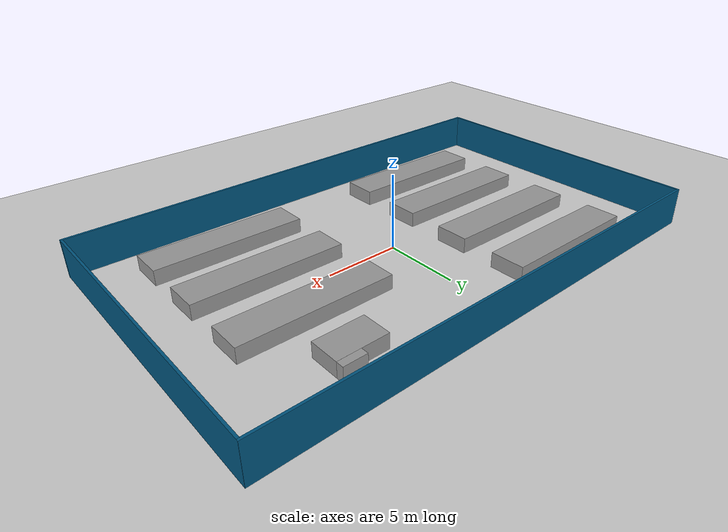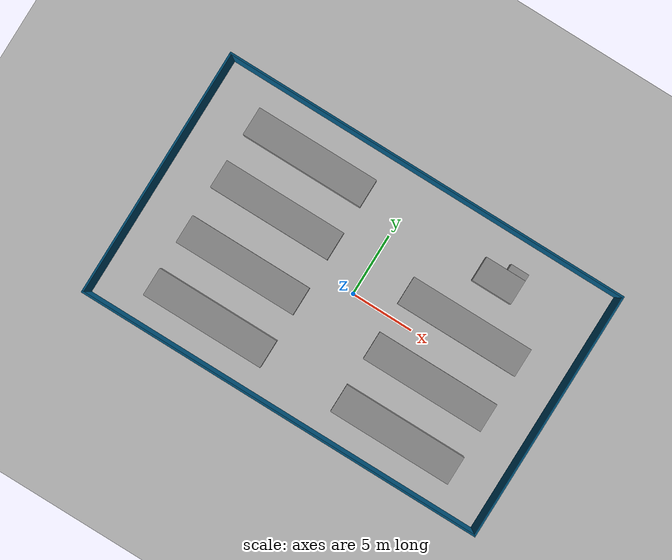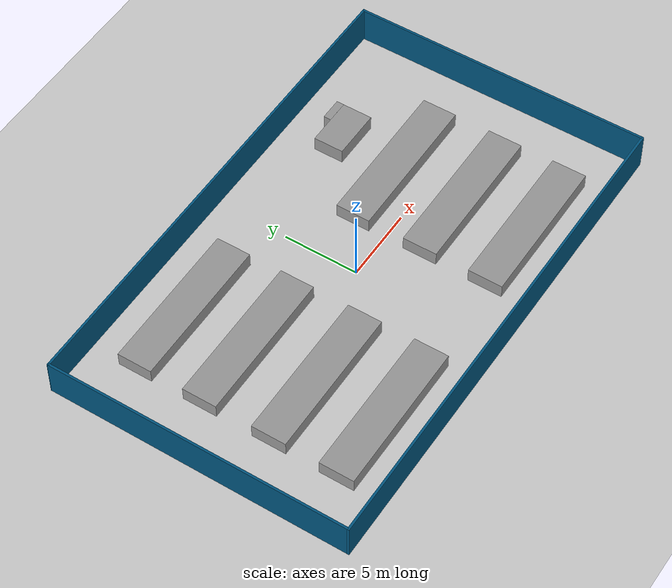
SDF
<sdf version="1.6">
 <world name="default">
  <light name="sun" type="directional">
   <pose>0 0 10 0 -0 0</pose>
   <diffuse>0.8 0.8 0.8 1</diffuse>
   <specular>0.2 0.2 0.2 1</specular>
   <attenuation>
    <range>1000</range>
    <constant>0.9</constant>
    <linear>0.01</linear>
    <quadratic>0.001</quadratic>
   </attenuation>
   <direction>-0.5 0.1 -0.9</direction>
  </light>
  <model name="ground_plane">
   <static>1</static>
   <link name="link">
    <collision name="collision">
     <geometry><plane><normal>0 0 1</normal><size>100 100</size></plane></geometry>
     <surface>
      <contact><collide_bitmask>65535</collide_bitmask></contact>
      <friction><ode><mu>100</mu><mu2>50</mu2></ode></friction>
     </surface>
    </collision>
    <visual name="visual">
     <cast_shadows>0</cast_shadows>
     <geometry><plane><normal>0 0 1</normal><size>100 100</size></plane></geometry>
     <material>
      <script><uri>file://media/materials/scripts/gazebo.material</uri><name>Gazebo/Grey</name></script>
     </material>
    </visual>
   </link>
  </model>
  <gravity>0 0 -9.8</gravity>
  <magnetic_field>6e-06 2.3e-05 -4.2e-05</magnetic_field>
  <atmosphere type="adiabatic"/>
  <physics name="default_physics" default="0" type="ode">
   <max_step_size>0.001</max_step_size>
   <real_time_factor>1</real_time_factor>
   <real_time_update_rate>1000</real_time_update_rate>
  </physics>
  <scene><ambient>0.4 0.4 0.4 1</ambient><background>0.7 0.7 0.7 1</background><shadows>1</shadows></scene>
  <audio><device>default</device></audio>
  <spherical_coordinates>
   <surface_model>EARTH_WGS84</surface_model>
   <latitude_deg>0</latitude_deg>
   <longitude_deg>0</longitude_deg>
   <elevation>0</elevation>
   <heading_deg>0</heading_deg>
  </spherical_coordinates>
  <model name="varta_machine">
   <link name="link_0">
    <inertial>
     <mass>1</mass>
     <inertia>
      <ixx>0.166667</ixx>
      <ixy>0</ixy>
      <ixz>0</ixz>
      <iyy>0.166667</iyy>
      <iyz>0</iyz>
      <izz>0.166667</izz>
     </inertia>
    </inertial>
    <pose>0.1057 -0.071391 0 0 -0 0</pose>
    <visual name="visual">
     <geometry><box><size>10 2.3 1</size></box></geometry>
     <material>
      <lighting>1</lighting>
      <script><uri>file://media/materials/scripts/gazebo.material</uri><name>Gazebo/Grey</name></script>
      <shader type="vertex"><normal_map>__default__</normal_map></shader>
      <ambient>0.3 0.3 0.3 1</ambient>
      <diffuse>0.7 0.7 0.7 1</diffuse>
      <specular>0.01 0.01 0.01 1</specular>
      <emissive>0 0 0 1</emissive>
     </material>
    </visual>
    <collision name="collision">
     <geometry><box><size>10 2.3 1</size></box></geometry>
     <surface>
      <friction>
       <ode><mu>1</mu><mu2>1</mu2><fdir1>0 0 0</fdir1><slip1>0</slip1><slip2>0</slip2></ode>
       <torsional>
        <coefficient>1</coefficient>
        <patch_radius>0</patch_radius>
        <surface_radius>0</surface_radius>
        <use_patch_radius>1</use_patch_radius>
        <ode><slip>0</slip></ode>
       </torsional>
      </friction>
      <bounce><restitution_coefficient>0</restitution_coefficient><threshold>1e+06</threshold></bounce>
      <contact>
       <collide_without_contact>0</collide_without_contact>
       <collide_without_contact_bitmask>1</collide_without_contact_bitmask>
       <collide_bitmask>1</collide_bitmask>
       <ode>
        <soft_cfm>0</soft_cfm>
        <soft_erp>0.2</soft_erp>
        <kp>1e+13</kp>
        <kd>1</kd>
        <max_vel>0.01</max_vel>
        <min_depth>0</min_depth>
       </ode>
       <bullet>
        <split_impulse>1</split_impulse>
        <split_impulse_penetration_threshold>-0.01</split_impulse_penetration_threshold>
        <soft_cfm>0</soft_cfm>
        <soft_erp>0.2</soft_erp>
        <kp>1e+13</kp>
        <kd>1</kd>
       </bullet>
      </contact>
     </surface>
    </collision>
   </link>
   <static>0</static>
   <pose>-8.00023 6.82591 0.455815 0 -0.008665 0</pose>
  </model>
  <model name="varta_machine_0">
   <link name="link_0">
    <inertial>
     <mass>1</mass>
     <inertia>
      <ixx>0.166667</ixx>
      <ixy>0</ixy>
      <ixz>0</ixz>
      <iyy>0.166667</iyy>
      <iyz>0</iyz>
      <izz>0.166667</izz>
     </inertia>
    </inertial>
    <pose>0.1057 -0.071391 0 0 -0 0</pose>
    <visual name="visual">
     <geometry><box><size>10 2.3 1</size></box></geometry>
     <material>
      <lighting>1</lighting>
      <script><uri>file://media/materials/scripts/gazebo.material</uri><name>Gazebo/Grey</name></script>
      <shader type="vertex"><normal_map>__default__</normal_map></shader>
      <ambient>0.3 0.3 0.3 1</ambient>
      <diffuse>0.7 0.7 0.7 1</diffuse>
      <specular>0.01 0.01 0.01 1</specular>
      <emissive>0 0 0 1</emissive>
     </material>
    </visual>
    <collision name="collision">
     <geometry><box><size>10 2.3 1</size></box></geometry>
     <surface>
      <friction>
       <ode><mu>1</mu><mu2>1</mu2><fdir1>0 0 0</fdir1><slip1>0</slip1><slip2>0</slip2></ode>
       <torsional>
        <coefficient>1</coefficient>
        <patch_radius>0</patch_radius>
        <surface_radius>0</surface_radius>
        <use_patch_radius>1</use_patch_radius>
        <ode><slip>0</slip></ode>
       </torsional>
      </friction>
      <bounce><restitution_coefficient>0</restitution_coefficient><threshold>1e+06</threshold></bounce>
      <contact>
       <collide_without_contact>0</collide_without_contact>
       <collide_without_contact_bitmask>1</collide_without_contact_bitmask>
       <collide_bitmask>1</collide_bitmask>
       <ode>
        <soft_cfm>0</soft_cfm>
        <soft_erp>0.2</soft_erp>
        <kp>1e+13</kp>
        <kd>1</kd>
        <max_vel>0.01</max_vel>
        <min_depth>0</min_depth>
       </ode>
       <bullet>
        <split_impulse>1</split_impulse>
        <split_impulse_penetration_threshold>-0.01</split_impulse_penetration_threshold>
        <soft_cfm>0</soft_cfm>
        <soft_erp>0.2</soft_erp>
        <kp>1e+13</kp>
        <kd>1</kd>
       </bullet>
      </contact>
     </surface>
    </collision>
   </link>
   <static>0</static>
   <pose>-8.00023 2.32591 0.455815 0 -0.008665 0</pose>
  </model>
  <model name="varta_machine_1">
   <link name="link_0">
    <inertial>
     <mass>1</mass>
     <inertia>
      <ixx>0.166667</ixx>
      <ixy>0</ixy>
      <ixz>0</ixz>
      <iyy>0.166667</iyy>
      <iyz>0</iyz>
      <izz>0.166667</izz>
     </inertia>
    </inertial>
    <pose>0.1057 -0.071391 0 0 -0 0</pose>
    <visual name="visual">
     <geometry><box><size>10 2.3 1</size></box></geometry>
     <material>
      <lighting>1</lighting>
      <script><uri>file://media/materials/scripts/gazebo.material</uri><name>Gazebo/Grey</name></script>
      <shader type="vertex"><normal_map>__default__</normal_map></shader>
      <ambient>0.3 0.3 0.3 1</ambient>
      <diffuse>0.7 0.7 0.7 1</diffuse>
      <specular>0.01 0.01 0.01 1</specular>
      <emissive>0 0 0 1</emissive>
     </material>
    </visual>
    <collision name="collision">
     <geometry><box><size>10 2.3 1</size></box></geometry>
     <surface>
      <friction>
       <ode><mu>1</mu><mu2>1</mu2><fdir1>0 0 0</fdir1><slip1>0</slip1><slip2>0</slip2></ode>
       <torsional>
        <coefficient>1</coefficient>
        <patch_radius>0</patch_radius>
        <surface_radius>0</surface_radius>
        <use_patch_radius>1</use_patch_radius>
        <ode><slip>0</slip></ode>
       </torsional>
      </friction>
      <bounce><restitution_coefficient>0</restitution_coefficient><threshold>1e+06</threshold></bounce>
      <contact>
       <collide_without_contact>0</collide_without_contact>
       <collide_without_contact_bitmask>1</collide_without_contact_bitmask>
       <collide_bitmask>1</collide_bitmask>
       <ode>
        <soft_cfm>0</soft_cfm>
        <soft_erp>0.2</soft_erp>
        <kp>1e+13</kp>
        <kd>1</kd>
        <max_vel>0.01</max_vel>
        <min_depth>0</min_depth>
       </ode>
       <bullet>
        <split_impulse>1</split_impulse>
        <split_impulse_penetration_threshold>-0.01</split_impulse_penetration_threshold>
        <soft_cfm>0</soft_cfm>
        <soft_erp>0.2</soft_erp>
        <kp>1e+13</kp>
        <kd>1</kd>
       </bullet>
      </contact>
     </surface>
    </collision>
   </link>
   <static>0</static>
   <pose>-8.00023 -2.37409 0.455815 0 -0.008665 0</pose>
  </model>
  <model name="VartaWalls">
   <link name="Wall_12">
    <pose>0 9.95647 0 0 -0 0</pose>
    <visual name="Wall_12_Visual">
     <pose>0 0 1.25 0 -0 0</pose>
     <geometry><box><size>33 0.15 2.5</size></box></geometry>
     <material>
      <script><uri>file://media/materials/scripts/gazebo.material</uri><name>Gazebo/Grey</name></script>
      <ambient>0 0.333333 0.498039 1</ambient>
     </material>
     <meta><layer>0</layer></meta>
    </visual>
    <collision name="Wall_12_Collision">
     <pose>0 0 1.25 0 -0 0</pose>
     <geometry><box><size>33 0.15 2.5</size></box></geometry>
     <surface>
      <friction>
       <ode><mu>1</mu><mu2>1</mu2><fdir1>0 0 0</fdir1><slip1>0</slip1><slip2>0</slip2></ode>
       <torsional>
        <coefficient>1</coefficient>
        <patch_radius>0</patch_radius>
        <surface_radius>0</surface_radius>
        <use_patch_radius>1</use_patch_radius>
        <ode><slip>0</slip></ode>
       </torsional>
      </friction>
      <bounce><restitution_coefficient>0</restitution_coefficient><threshold>1e+06</threshold></bounce>
      <contact>
       <collide_without_contact>0</collide_without_contact>
       <collide_without_contact_bitmask>1</collide_without_contact_bitmask>
       <collide_bitmask>1</collide_bitmask>
       <ode>
        <soft_cfm>0</soft_cfm>
        <soft_erp>0.2</soft_erp>
        <kp>1e+13</kp>
        <kd>1</kd>
        <max_vel>0.01</max_vel>
        <min_depth>0</min_depth>
       </ode>
       <bullet>
        <split_impulse>1</split_impulse>
        <split_impulse_penetration_threshold>-0.01</split_impulse_penetration_threshold>
        <soft_cfm>0</soft_cfm>
        <soft_erp>0.2</soft_erp>
        <kp>1e+13</kp>
        <kd>1</kd>
       </bullet>
      </contact>
     </surface>
    </collision>
   </link>
   <link name="Wall_13">
    <pose>16.425 0 0 0 0 -1.5708</pose>
    <inertial>
     <mass>1</mass>
     <inertia><ixx>1</ixx><ixy>0</ixy><ixz>0</ixz><iyy>1</iyy><iyz>0</iyz><izz>1</izz></inertia>
    </inertial>
    <visual name="Wall_13_Visual">
     <pose>0 0 1.25 0 -0 0</pose>
     <geometry><box><size>20 0.15 2.5</size></box></geometry>
     <material>
      <script><uri>file://media/materials/scripts/gazebo.material</uri><name>Gazebo/Grey</name></script>
      <ambient>0 0.333 0.498 1</ambient>
      <shader type="vertex"><normal_map>__default__</normal_map></shader>
      <diffuse>0.7 0.7 0.7 1</diffuse>
      <specular>0.01 0.01 0.01 1</specular>
      <emissive>0 0 0 1</emissive>
     </material>
     <meta><layer>0</layer></meta>
    </visual>
    <collision name="Wall_13_Collision">
     <pose>0 0 1.25 0 -0 0</pose>
     <geometry><box><size>20 0.15 2.5</size></box></geometry>
     <surface>
      <friction>
       <ode><mu>1</mu><mu2>1</mu2><fdir1>0 0 0</fdir1><slip1>0</slip1><slip2>0</slip2></ode>
       <torsional>
        <coefficient>1</coefficient>
        <patch_radius>0</patch_radius>
        <surface_radius>0</surface_radius>
        <use_patch_radius>1</use_patch_radius>
        <ode><slip>0</slip></ode>
       </torsional>
      </friction>
      <bounce><restitution_coefficient>0</restitution_coefficient><threshold>1e+06</threshold></bounce>
      <contact>
       <collide_without_contact>0</collide_without_contact>
       <collide_without_contact_bitmask>1</collide_without_contact_bitmask>
       <collide_bitmask>1</collide_bitmask>
       <ode>
        <soft_cfm>0</soft_cfm>
        <soft_erp>0.2</soft_erp>
        <kp>1e+13</kp>
        <kd>1</kd>
        <max_vel>0.01</max_vel>
        <min_depth>0</min_depth>
       </ode>
       <bullet>
        <split_impulse>1</split_impulse>
        <split_impulse_penetration_threshold>-0.01</split_impulse_penetration_threshold>
        <soft_cfm>0</soft_cfm>
        <soft_erp>0.2</soft_erp>
        <kp>1e+13</kp>
        <kd>1</kd>
       </bullet>
      </contact>
     </surface>
    </collision>
   </link>
   <link name="Wall_5">
    <pose>0 -10.0304 0 0 -0 0</pose>
    <visual name="Wall_5_Visual">
     <pose>0 0 1.25 0 -0 0</pose>
     <geometry><box><size>33 0.15 2.5</size></box></geometry>
     <material>
      <script><uri>file://media/materials/scripts/gazebo.material</uri><name>Gazebo/Grey</name></script>
      <ambient>0 0.333333 0.498039 1</ambient>
     </material>
     <meta><layer>0</layer></meta>
    </visual>
    <collision name="Wall_5_Collision">
     <pose>0 0 1.25 0 -0 0</pose>
     <geometry><box><size>33 0.15 2.5</size></box></geometry>
     <surface>
      <friction>
       <ode><mu>1</mu><mu2>1</mu2><fdir1>0 0 0</fdir1><slip1>0</slip1><slip2>0</slip2></ode>
       <torsional>
        <coefficient>1</coefficient>
        <patch_radius>0</patch_radius>
        <surface_radius>0</surface_radius>
        <use_patch_radius>1</use_patch_radius>
        <ode><slip>0</slip></ode>
       </torsional>
      </friction>
      <bounce><restitution_coefficient>0</restitution_coefficient><threshold>1e+06</threshold></bounce>
      <contact>
       <collide_without_contact>0</collide_without_contact>
       <collide_without_contact_bitmask>1</collide_without_contact_bitmask>
       <collide_bitmask>1</collide_bitmask>
       <ode>
        <soft_cfm>0</soft_cfm>
        <soft_erp>0.2</soft_erp>
        <kp>1e+13</kp>
        <kd>1</kd>
        <max_vel>0.01</max_vel>
        <min_depth>0</min_depth>
       </ode>
       <bullet>
        <split_impulse>1</split_impulse>
        <split_impulse_penetration_threshold>-0.01</split_impulse_penetration_threshold>
        <soft_cfm>0</soft_cfm>
        <soft_erp>0.2</soft_erp>
        <kp>1e+13</kp>
        <kd>1</kd>
       </bullet>
      </contact>
     </surface>
    </collision>
   </link>
   <link name="Wall_7">
    <pose>-16.425 0 0 0 -0 1.5708</pose>
    <inertial>
     <mass>1</mass>
     <inertia><ixx>1</ixx><ixy>0</ixy><ixz>0</ixz><iyy>1</iyy><iyz>0</iyz><izz>1</izz></inertia>
    </inertial>
    <visual name="Wall_7_Visual">
     <pose>0 0 1.25 0 -0 0</pose>
     <geometry><box><size>20 0.15 2.5</size></box></geometry>
     <material>
      <script><uri>file://media/materials/scripts/gazebo.material</uri><name>Gazebo/Grey</name></script>
      <ambient>0 0.333 0.498 1</ambient>
      <shader type="vertex"><normal_map>__default__</normal_map></shader>
      <diffuse>0.7 0.7 0.7 1</diffuse>
      <specular>0.01 0.01 0.01 1</specular>
      <emissive>0 0 0 1</emissive>
     </material>
     <meta><layer>0</layer></meta>
    </visual>
    <collision name="Wall_7_Collision">
     <pose>0 0 1.25 0 -0 0</pose>
     <geometry><box><size>20 0.15 2.5</size></box></geometry>
     <surface>
      <friction>
       <ode><mu>1</mu><mu2>1</mu2><fdir1>0 0 0</fdir1><slip1>0</slip1><slip2>0</slip2></ode>
       <torsional>
        <coefficient>1</coefficient>
        <patch_radius>0</patch_radius>
        <surface_radius>0</surface_radius>
        <use_patch_radius>1</use_patch_radius>
        <ode><slip>0</slip></ode>
       </torsional>
      </friction>
      <bounce><restitution_coefficient>0</restitution_coefficient><threshold>1e+06</threshold></bounce>
      <contact>
       <collide_without_contact>0</collide_without_contact>
       <collide_without_contact_bitmask>1</collide_without_contact_bitmask>
       <collide_bitmask>1</collide_bitmask>
       <ode>
        <soft_cfm>0</soft_cfm>
        <soft_erp>0.2</soft_erp>
        <kp>1e+13</kp>
        <kd>1</kd>
        <max_vel>0.01</max_vel>
        <min_depth>0</min_depth>
       </ode>
       <bullet>
        <split_impulse>1</split_impulse>
        <split_impulse_penetration_threshold>-0.01</split_impulse_penetration_threshold>
        <soft_cfm>0</soft_cfm>
        <soft_erp>0.2</soft_erp>
        <kp>1e+13</kp>
        <kd>1</kd>
       </bullet>
      </contact>
     </surface>
    </collision>
   </link>
   <static>1</static>
  </model>
  <model name="varta_machine_2">
   <link name="link_0">
    <inertial>
     <mass>1</mass>
     <inertia>
      <ixx>0.166667</ixx>
      <ixy>0</ixy>
      <ixz>0</ixz>
      <iyy>0.166667</iyy>
      <iyz>0</iyz>
      <izz>0.166667</izz>
     </inertia>
    </inertial>
    <pose>0.1057 -0.071391 0 0 -0 0</pose>
    <visual name="visual">
     <geometry><box><size>10 2.3 1</size></box></geometry>
     <material>
      <lighting>1</lighting>
      <script><uri>file://media/materials/scripts/gazebo.material</uri><name>Gazebo/Grey</name></script>
      <shader type="vertex"><normal_map>__default__</normal_map></shader>
      <ambient>0.3 0.3 0.3 1</ambient>
      <diffuse>0.7 0.7 0.7 1</diffuse>
      <specular>0.01 0.01 0.01 1</specular>
      <emissive>0 0 0 1</emissive>
     </material>
    </visual>
    <collision name="collision">
     <geometry><box><size>10 2.3 1</size></box></geometry>
     <surface>
      <friction>
       <ode><mu>1</mu><mu2>1</mu2><fdir1>0 0 0</fdir1><slip1>0</slip1><slip2>0</slip2></ode>
       <torsional>
        <coefficient>1</coefficient>
        <patch_radius>0</patch_radius>
        <surface_radius>0</surface_radius>
        <use_patch_radius>1</use_patch_radius>
        <ode><slip>0</slip></ode>
       </torsional>
      </friction>
      <bounce><restitution_coefficient>0</restitution_coefficient><threshold>1e+06</threshold></bounce>
      <contact>
       <collide_without_contact>0</collide_without_contact>
       <collide_without_contact_bitmask>1</collide_without_contact_bitmask>
       <collide_bitmask>1</collide_bitmask>
       <ode>
        <soft_cfm>0</soft_cfm>
        <soft_erp>0.2</soft_erp>
        <kp>1e+13</kp>
        <kd>1</kd>
        <max_vel>0.01</max_vel>
        <min_depth>0</min_depth>
       </ode>
       <bullet>
        <split_impulse>1</split_impulse>
        <split_impulse_penetration_threshold>-0.01</split_impulse_penetration_threshold>
        <soft_cfm>0</soft_cfm>
        <soft_erp>0.2</soft_erp>
        <kp>1e+13</kp>
        <kd>1</kd>
       </bullet>
      </contact>
     </surface>
    </collision>
   </link>
   <static>0</static>
   <pose>-8.00023 -6.87409 0.455815 0 -0.008665 0</pose>
  </model>
  <model name="varta_machine_3">
   <link name="link_0">
    <inertial>
     <mass>1</mass>
     <inertia>
      <ixx>0.166667</ixx>
      <ixy>0</ixy>
      <ixz>0</ixz>
      <iyy>0.166667</iyy>
      <iyz>0</iyz>
      <izz>0.166667</izz>
     </inertia>
    </inertial>
    <pose>0.1057 -0.071391 0 0 -0 0</pose>
    <visual name="visual">
     <geometry><box><size>10 2.3 1</size></box></geometry>
     <material>
      <lighting>1</lighting>
      <script><uri>file://media/materials/scripts/gazebo.material</uri><name>Gazebo/Grey</name></script>
      <shader type="vertex"><normal_map>__default__</normal_map></shader>
      <ambient>0.3 0.3 0.3 1</ambient>
      <diffuse>0.7 0.7 0.7 1</diffuse>
      <specular>0.01 0.01 0.01 1</specular>
      <emissive>0 0 0 1</emissive>
     </material>
    </visual>
    <collision name="collision">
     <geometry><box><size>10 2.3 1</size></box></geometry>
     <surface>
      <friction>
       <ode><mu>1</mu><mu2>1</mu2><fdir1>0 0 0</fdir1><slip1>0</slip1><slip2>0</slip2></ode>
       <torsional>
        <coefficient>1</coefficient>
        <patch_radius>0</patch_radius>
        <surface_radius>0</surface_radius>
        <use_patch_radius>1</use_patch_radius>
        <ode><slip>0</slip></ode>
       </torsional>
      </friction>
      <bounce><restitution_coefficient>0</restitution_coefficient><threshold>1e+06</threshold></bounce>
      <contact>
       <collide_without_contact>0</collide_without_contact>
       <collide_without_contact_bitmask>1</collide_without_contact_bitmask>
       <collide_bitmask>1</collide_bitmask>
       <ode>
        <soft_cfm>0</soft_cfm>
        <soft_erp>0.2</soft_erp>
        <kp>1e+13</kp>
        <kd>1</kd>
        <max_vel>0.01</max_vel>
        <min_depth>0</min_depth>
       </ode>
       <bullet>
        <split_impulse>1</split_impulse>
        <split_impulse_penetration_threshold>-0.01</split_impulse_penetration_threshold>
        <soft_cfm>0</soft_cfm>
        <soft_erp>0.2</soft_erp>
        <kp>1e+13</kp>
        <kd>1</kd>
       </bullet>
      </contact>
     </surface>
    </collision>
   </link>
   <static>0</static>
   <pose>7.99977 -6.87409 0.455815 0 -0.008665 0</pose>
  </model>
  <model name="varta_machine_4">
   <link name="link_0">
    <inertial>
     <mass>1</mass>
     <inertia>
      <ixx>0.166667</ixx>
      <ixy>0</ixy>
      <ixz>0</ixz>
      <iyy>0.166667</iyy>
      <iyz>0</iyz>
      <izz>0.166667</izz>
     </inertia>
    </inertial>
    <pose>0.1057 -0.071391 0 0 -0 0</pose>
    <visual name="visual">
     <geometry><box><size>10 2.3 1</size></box></geometry>
     <material>
      <lighting>1</lighting>
      <script><uri>file://media/materials/scripts/gazebo.material</uri><name>Gazebo/Grey</name></script>
      <shader type="vertex"><normal_map>__default__</normal_map></shader>
      <ambient>0.3 0.3 0.3 1</ambient>
      <diffuse>0.7 0.7 0.7 1</diffuse>
      <specular>0.01 0.01 0.01 1</specular>
      <emissive>0 0 0 1</emissive>
     </material>
    </visual>
    <collision name="collision">
     <geometry><box><size>10 2.3 1</size></box></geometry>
     <surface>
      <friction>
       <ode><mu>1</mu><mu2>1</mu2><fdir1>0 0 0</fdir1><slip1>0</slip1><slip2>0</slip2></ode>
       <torsional>
        <coefficient>1</coefficient>
        <patch_radius>0</patch_radius>
        <surface_radius>0</surface_radius>
        <use_patch_radius>1</use_patch_radius>
        <ode><slip>0</slip></ode>
       </torsional>
      </friction>
      <bounce><restitution_coefficient>0</restitution_coefficient><threshold>1e+06</threshold></bounce>
      <contact>
       <collide_without_contact>0</collide_without_contact>
       <collide_without_contact_bitmask>1</collide_without_contact_bitmask>
       <collide_bitmask>1</collide_bitmask>
       <ode>
        <soft_cfm>0</soft_cfm>
        <soft_erp>0.2</soft_erp>
        <kp>1e+13</kp>
        <kd>1</kd>
        <max_vel>0.01</max_vel>
        <min_depth>0</min_depth>
       </ode>
       <bullet>
        <split_impulse>1</split_impulse>
        <split_impulse_penetration_threshold>-0.01</split_impulse_penetration_threshold>
        <soft_cfm>0</soft_cfm>
        <soft_erp>0.2</soft_erp>
        <kp>1e+13</kp>
        <kd>1</kd>
       </bullet>
      </contact>
     </surface>
    </collision>
   </link>
   <static>0</static>
   <pose>7.99977 -2.37409 0.455815 0 -0.008665 0</pose>
  </model>
  <model name="varta_machine_5">
   <link name="link_0">
    <inertial>
     <mass>1</mass>
     <inertia>
      <ixx>0.166667</ixx>
      <ixy>0</ixy>
      <ixz>0</ixz>
      <iyy>0.166667</iyy>
      <iyz>0</iyz>
      <izz>0.166667</izz>
     </inertia>
    </inertial>
    <pose>0.1057 -0.071391 0 0 -0 0</pose>
    <visual name="visual">
     <geometry><box><size>10 2.3 1</size></box></geometry>
     <material>
      <lighting>1</lighting>
      <script><uri>file://media/materials/scripts/gazebo.material</uri><name>Gazebo/Grey</name></script>
      <shader type="vertex"><normal_map>__default__</normal_map></shader>
      <ambient>0.3 0.3 0.3 1</ambient>
      <diffuse>0.7 0.7 0.7 1</diffuse>
      <specular>0.01 0.01 0.01 1</specular>
      <emissive>0 0 0 1</emissive>
     </material>
    </visual>
    <collision name="collision">
     <geometry><box><size>10 2.3 1</size></box></geometry>
     <surface>
      <friction>
       <ode><mu>1</mu><mu2>1</mu2><fdir1>0 0 0</fdir1><slip1>0</slip1><slip2>0</slip2></ode>
       <torsional>
        <coefficient>1</coefficient>
        <patch_radius>0</patch_radius>
        <surface_radius>0</surface_radius>
        <use_patch_radius>1</use_patch_radius>
        <ode><slip>0</slip></ode>
       </torsional>
      </friction>
      <bounce><restitution_coefficient>0</restitution_coefficient><threshold>1e+06</threshold></bounce>
      <contact>
       <collide_without_contact>0</collide_without_contact>
       <collide_without_contact_bitmask>1</collide_without_contact_bitmask>
       <collide_bitmask>1</collide_bitmask>
       <ode>
        <soft_cfm>0</soft_cfm>
        <soft_erp>0.2</soft_erp>
        <kp>1e+13</kp>
        <kd>1</kd>
        <max_vel>0.01</max_vel>
        <min_depth>0</min_depth>
       </ode>
       <bullet>
        <split_impulse>1</split_impulse>
        <split_impulse_penetration_threshold>-0.01</split_impulse_penetration_threshold>
        <soft_cfm>0</soft_cfm>
        <soft_erp>0.2</soft_erp>
        <kp>1e+13</kp>
        <kd>1</kd>
       </bullet>
      </contact>
     </surface>
    </collision>
   </link>
   <static>0</static>
   <pose>7.99977 2.32591 0.455815 0 -0.008665 0</pose>
  </model>
  <model name="hubmain">
   <link name="link_1">
    <inertial>
     <mass>1</mass>
     <inertia>
      <ixx>0.166667</ixx>
      <ixy>0</ixy>
      <ixz>0</ixz>
      <iyy>0.166667</iyy>
      <iyz>0</iyz>
      <izz>0.166667</izz>
     </inertia>
    </inertial>
    <visual name="visual">
     <geometry><box><size>3.3 2 1</size></box></geometry>
     <material>
      <lighting>1</lighting>
      <script><uri>file://media/materials/scripts/gazebo.material</uri><name>Gazebo/Grey</name></script>
      <shader type="vertex"><normal_map>__default__</normal_map></shader>
      <ambient>0.3 0.3 0.3 1</ambient>
      <diffuse>0.7 0.7 0.7 1</diffuse>
      <specular>0.01 0.01 0.01 1</specular>
      <emissive>0 0 0 1</emissive>
     </material>
    </visual>
    <collision name="collision">
     <geometry><box><size>3.3 2 1</size></box></geometry>
     <surface>
      <friction>
       <ode><mu>1</mu><mu2>1</mu2><fdir1>0 0 0</fdir1><slip1>0</slip1><slip2>0</slip2></ode>
       <torsional>
        <coefficient>1</coefficient>
        <patch_radius>0</patch_radius>
        <surface_radius>0</surface_radius>
        <use_patch_radius>1</use_patch_radius>
        <ode><slip>0</slip></ode>
       </torsional>
      </friction>
      <bounce><restitution_coefficient>0</restitution_coefficient><threshold>1e+06</threshold></bounce>
      <contact>
       <collide_without_contact>0</collide_without_contact>
       <collide_without_contact_bitmask>1</collide_without_contact_bitmask>
       <collide_bitmask>1</collide_bitmask>
       <ode>
        <soft_cfm>0</soft_cfm>
        <soft_erp>0.2</soft_erp>
        <kp>1e+13</kp>
        <kd>1</kd>
        <max_vel>0.01</max_vel>
        <min_depth>0</min_depth>
       </ode>
       <bullet>
        <split_impulse>1</split_impulse>
        <split_impulse_penetration_threshold>-0.01</split_impulse_penetration_threshold>
        <soft_cfm>0</soft_cfm>
        <soft_erp>0.2</soft_erp>
        <kp>1e+13</kp>
        <kd>1</kd>
       </bullet>
      </contact>
     </surface>
    </collision>
   </link>
   <static>0</static>
   <pose>8.45002 6.39903 0.5 -1e-06 -0 9e-06</pose>
  </model>
  <model name="hub2">
   <link name="link_2">
    <inertial>
     <mass>1</mass>
     <inertia>
      <ixx>0.166667</ixx>
      <ixy>0</ixy>
      <ixz>0</ixz>
      <iyy>0.166667</iyy>
      <iyz>0</iyz>
      <izz>0.166667</izz>
     </inertia>
    </inertial>
    <visual name="visual">
     <geometry><box><size>1.5 0.5 1</size></box></geometry>
     <material>
      <lighting>1</lighting>
      <script><uri>file://media/materials/scripts/gazebo.material</uri><name>Gazebo/Grey</name></script>
      <shader type="vertex"><normal_map>__default__</normal_map></shader>
      <ambient>0.3 0.3 0.3 1</ambient>
      <diffuse>0.7 0.7 0.7 1</diffuse>
      <specular>0.01 0.01 0.01 1</specular>
      <emissive>0 0 0 1</emissive>
     </material>
    </visual>
    <collision name="collision">
     <geometry><box><size>1.5 0.5 1</size></box></geometry>
     <surface>
      <friction>
       <ode><mu>1</mu><mu2>1</mu2><fdir1>0 0 0</fdir1><slip1>0</slip1><slip2>0</slip2></ode>
       <torsional>
        <coefficient>1</coefficient>
        <patch_radius>0</patch_radius>
        <surface_radius>0</surface_radius>
        <use_patch_radius>1</use_patch_radius>
        <ode><slip>0</slip></ode>
       </torsional>
      </friction>
      <bounce><restitution_coefficient>0</restitution_coefficient><threshold>1e+06</threshold></bounce>
      <contact>
       <collide_without_contact>0</collide_without_contact>
       <collide_without_contact_bitmask>1</collide_without_contact_bitmask>
       <collide_bitmask>1</collide_bitmask>
       <ode>
        <soft_cfm>0</soft_cfm>
        <soft_erp>0.2</soft_erp>
        <kp>1e+13</kp>
        <kd>1</kd>
        <max_vel>0.01</max_vel>
        <min_depth>0</min_depth>
       </ode>
       <bullet>
        <split_impulse>1</split_impulse>
        <split_impulse_penetration_threshold>-0.01</split_impulse_penetration_threshold>
        <soft_cfm>0</soft_cfm>
        <soft_erp>0.2</soft_erp>
        <kp>1e+13</kp>
        <kd>1</kd>
       </bullet>
      </contact>
     </surface>
    </collision>
   </link>
   <static>0</static>
   <pose>9.35 7.65 0.5 0 -0 0</pose>
  </model>
 </world>
</sdf>
